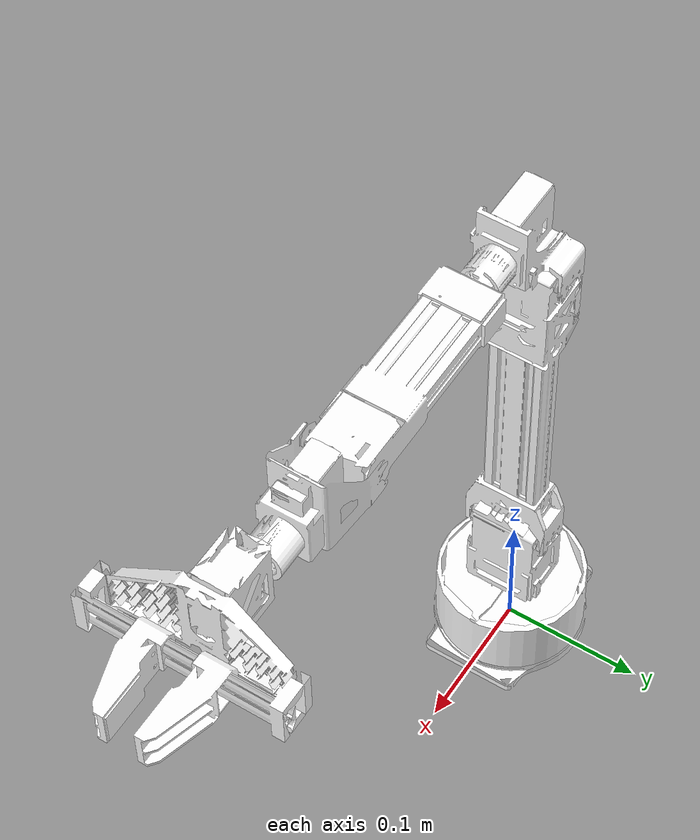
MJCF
<mujoco model="d1_description">
  <compiler angle="radian" meshdir="../meshes"/>

  <option integrator="implicitfast"/>

  <default>
    <default class="d1">
      <joint damping="1" frictionloss="1"/>

      <default class="visual">
        <geom type="mesh" group="2" contype="0" conaffinity="0"/>
      </default>
      <default class="collision">
        <geom type="cylinder" group="3" mass="0" density="0"/>
      </default>
    </default>
  </default>

  <asset>
    <mesh name="base_link" content_type="model/stl" file="base_link.STL"/>
    <mesh name="Link1" content_type="model/stl" file="Link1.STL"/>
    <mesh name="Link2" content_type="model/stl" file="Link2.STL"/>
    <mesh name="Link3" content_type="model/stl" file="Link3.STL"/>
    <mesh name="Link4" content_type="model/stl" file="Link4.STL"/>
    <mesh name="Link5" content_type="model/stl" file="Link5.STL"/>
    <mesh name="Link6" content_type="model/stl" file="Link6.STL"/>
    <mesh name="Link7_1" content_type="model/stl" file="Link7_1.STL"/>
    <mesh name="Link7_2" content_type="model/stl" file="Link7_2.STL"/>
  </asset>

  <worldbody>
    <body name="base_link">
      <inertial pos="-0.00048697 -2.9605e-12 0.017142" quat="0 0.708005 0 0.706208" mass="0.077233" diaginertia="0.000183621 0.00011888 0.000103159"/>
      <geom type="mesh" contype="0" conaffinity="0" group="1" density="0" rgba="1 1 1 1" mesh="base_link"/>
      <geom type="mesh" rgba="1 1 1 1" mesh="base_link"/>
      <body name="Link1" pos="0 0 0.0533" quat="-3.67321e-06 0 0 -1">
        <inertial pos="0.0024649 0.00010517 0.032696" quat="0.999717 -0.0236435 -0.00169588 -0.00221682" mass="0.13174" diaginertia="6.72365e-05 5.41766e-05 4.66199e-05"/>
        <joint name="joint1" pos="0 0 0" axis="0 0 -1" range="-2.35 2.35"/>
        <geom type="mesh" contype="0" conaffinity="0" group="1" density="0" rgba="1 1 1 1" mesh="Link1"/>
        <geom type="mesh" rgba="1 1 1 1" mesh="Link1"/>
        <body name="Link2" pos="0 0.028 0.0563" quat="-2.59734e-06 -2.59735e-06 -0.707108 -0.707105">
          <inertial pos="0.0002018 0.19201 -0.027007" quat="0.706347 0.707865 -0.00093681 0.00051949" mass="0.20213" diaginertia="0.00025682 0.000229681 6.33062e-05"/>
          <joint name="joint2" pos="0 0 0" axis="0 0 -1" range="-1.57 1.57"/>
          <geom type="mesh" contype="0" conaffinity="0" group="1" density="0" rgba="1 1 1 1" mesh="Link2"/>
          <geom type="mesh" rgba="1 1 1 1" mesh="Link2"/>
          <body name="Link3" pos="0 0.2693 0.0009">
            <inertial pos="0.015164 0.044482 -0.027461" quat="0.690744 0.690771 -0.151176 -0.151179" mass="0.0629" diaginertia="1.84718e-05 1.4964e-05 1.13662e-05"/>
            <joint name="joint3" pos="0 0 0" axis="0 0 -1" range="-1.57 1.57"/>
            <geom type="mesh" contype="0" conaffinity="0" group="1" density="0" rgba="1 1 1 1" mesh="Link3"/>
            <geom type="mesh" rgba="1 1 1 1" mesh="Link3"/>
            <body name="Link4" pos="0.0577 0.042 -0.0275" quat="0.499998 -0.5 0.500002 -0.5">
              <inertial pos="-0.00029556 -0.00016104 0.091339" quat="0.999998 -3.46195e-05 0.00170171 0.00102754" mass="0.083332" diaginertia="3.93083e-05 3.4378e-05 1.15967e-05"/>
              <joint name="joint4" pos="0 0 0" axis="0 0 -1" range="-2.35 2.35"/>
              <geom type="mesh" contype="0" conaffinity="0" group="1" density="0" rgba="1 1 1 1" mesh="Link4"/>
              <geom type="mesh" rgba="1 1 1 1" mesh="Link4"/>
              <body name="Link5" pos="-0.0001 -0.0237 0.14018" quat="0.499998 0.5 -0.5 0.500002">
                <inertial pos="0.040573 0.0062891 -0.023838" quat="0.706153 0.706691 -0.0310982 -0.0311281" mass="0.053817" diaginertia="1.31069e-05 1.1049e-05 8.59523e-06"/>
                <joint name="joint5" pos="0 0 0" axis="0 0 -1" range="-1.57 1.57"/>
                <geom type="mesh" contype="0" conaffinity="0" group="1" density="0" rgba="1 1 1 1" mesh="Link5"/>
                <geom type="mesh" rgba="1 1 1 1" mesh="Link5"/>
                <body name="Link6" pos="0.0825 -0.0010782 -0.023822" quat="0.499998 -0.5 0.500002 -0.5">
                  <inertial pos="-0.0068528 -3.9973e-06 0.039705" quat="0.494949 0.495288 -0.504676 0.504992" mass="0.077892" diaginertia="4.8843e-05 3.8232e-05 1.7707e-05"/>
                  <joint name="joint6" pos="0 0 0" axis="0 0 -1" range="-2.35 2.35"/>
                  <geom type="mesh" contype="0" conaffinity="0" group="1" density="0" rgba="1 1 1 1" mesh="Link6"/>
                  <geom type="mesh" rgba="1 1 1 1" mesh="Link6"/>
                  <body name="Link7_1" pos="-0.0056012 -0.029636 0.0706" quat="0.499848 -0.50015 -0.49985 -0.500152">
                    <inertial pos="0.018927 0.006 0.012082" quat="0 0.677073 0 0.735916" mass="0.015046" diaginertia="2.62715e-06 2.0229e-06 1.25975e-06"/>
                    <joint name="gripper1" pos="0 0 0" axis="0 0 -1" type="slide" range="0 0.03"/>
                    <geom type="mesh" contype="0" conaffinity="0" group="1" density="0" rgba="1 1 1 1" mesh="Link7_1"/>
                    <geom type="mesh" rgba="1 1 1 1" mesh="Link7_1"/>
                  </body>
                  <body name="Link7_2" pos="-0.0056388 0.02964 0.0706" quat="0.500148 0.49985 -0.50015 0.499852">
                    <inertial pos="0.018927 -0.006 0.012082" quat="0 0.677073 0 0.735916" mass="0.015046" diaginertia="2.62715e-06 2.0229e-06 1.25975e-06"/>
                    <joint name="gripper2" pos="0 0 0" axis="0 0 1" type="slide" range="-0.03 0"/>
                    <geom type="mesh" contype="0" conaffinity="0" group="1" density="0" rgba="1 1 1 1" mesh="Link7_2"/>
                    <geom type="mesh" rgba="1 1 1 1" mesh="Link7_2"/>
                  </body>
                </body>
              </body>
            </body>
          </body>
        </body>
      </body>
    </body>
  </worldbody>

  <!-- Switch to position actuators -->
  <actuator>
    <position class="d1" name="motor1" joint="joint1" ctrlrange="-2.35 2.35" kp="100000" kv="10"/>
    <position class="d1" name="motor2" joint="joint2" ctrlrange="-1.57 1.57" kp="10" kv="10"/>
    <position class="d1" name="motor3" joint="joint3" ctrlrange="-1.57 1.57" kp="10" kv="10"/>
    <position class="d1" name="motor4" joint="joint4" ctrlrange="-2.35 2.35" kp="1000" kv="10"/>
    <position class="d1" name="motor5" joint="joint5" ctrlrange="-1.57 1.57" kp="10000" kv="10"/>
    <position class="d1" name="motor6" joint="joint6" ctrlrange="-2.35 2.35" kp="1000" kv="10"/>
    <position class="d1" name="motor7_1" joint="gripper1" ctrlrange="0 0.03" kp="1000" kv="10"/>
    <position class="d1" name="motor7_2" joint="gripper2" ctrlrange="-0.03 0" kp="1000" kv="10"/>
  </actuator>

  <sensor>
    <jointpos name="joint1_sensor" joint="joint1"/>
    <jointpos name="joint2_sensor" joint="joint2"/>
    <jointpos name="joint3_sensor" joint="joint3"/>
    <jointpos name="joint4_sensor" joint="joint4"/>
    <jointpos name="joint5_sensor" joint="joint5"/>
    <jointpos name="joint6_sensor" joint="joint6"/>
    <jointpos name="gripper1_sensor" joint="gripper1"/>
    <jointpos name="gripper2_sensor" joint="gripper2"/>
  </sensor>
  <keyframe>
    <key name="zero" qpos="0 0 0 0 0 0 0 0" ctrl="0 0 0 0 0 0 0 0"/>
    <key name="home" qpos="0 -1.57 1.57 0 0 0 0 0.03" ctrl="0 -1.57 1.57 0 0 0 0 0"/>
  </keyframe>
</mujoco>
